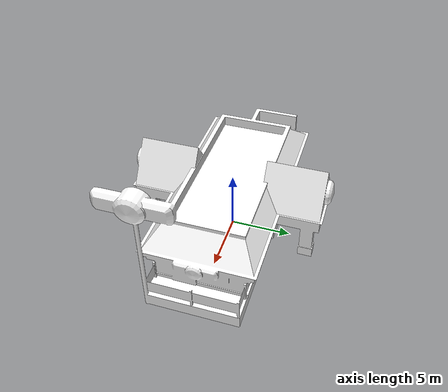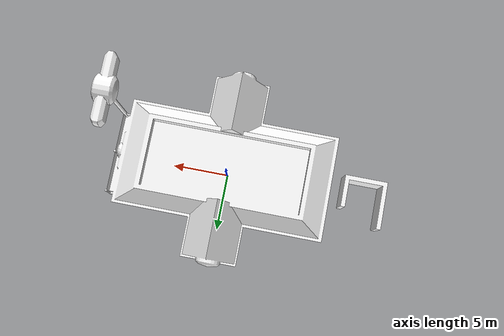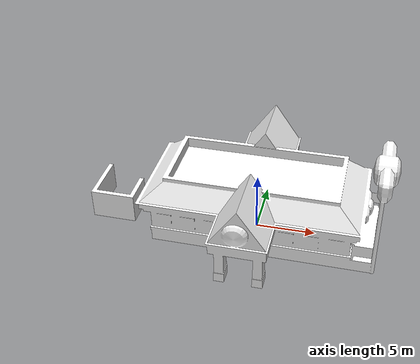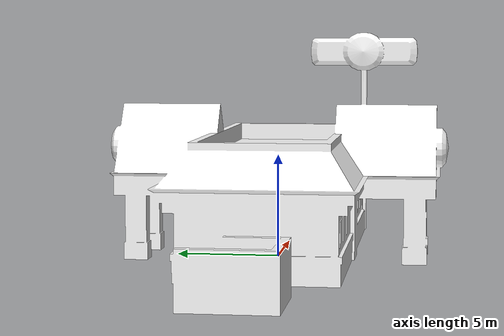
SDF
<?xml version="1.0" ?>
<sdf version="1.5">
  <model name="Fast Food">
    <static>true</static>
    <link name="link">
      <pose>0 0 3.15931296 0 0 0</pose>
      <collision name="collision">
        <geometry>
          <mesh>
            <scale>3 3 2</scale>
            <uri>model://fast_food/meshes/fast_food.dae</uri>
          </mesh>
        </geometry>
      </collision>
      <visual name="visual">
        <geometry>
          <mesh>
            <scale>3 3 2</scale>
            <uri>model://fast_food/meshes/fast_food.dae</uri>
          </mesh>
        </geometry>
        <material>
          <script>
            <uri>model://fast_food/materials/scripts</uri>
            <uri>model://fast_food/materials/textures</uri>
            <name>FastFood/Diffuse</name>
          </script>
          <shader type="normal_map_tangent_space">
            <normal_map>FastFood_Normal.png</normal_map>
          </shader>
        </material>
      </visual>
    </link>
  </model>
</sdf>
